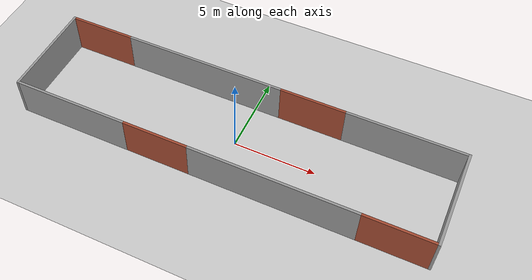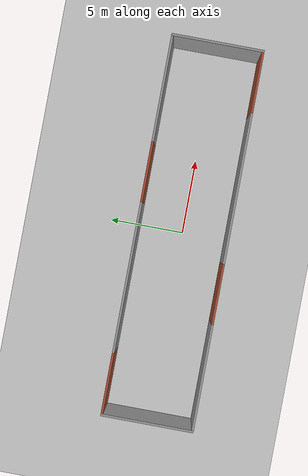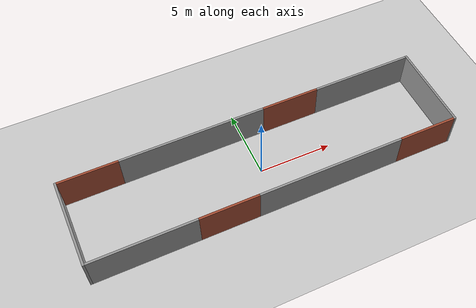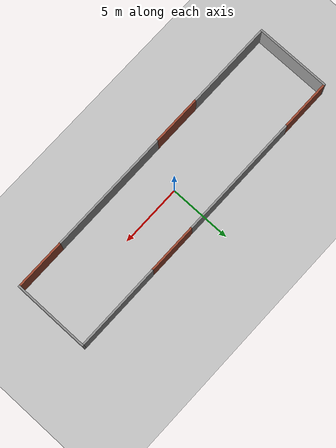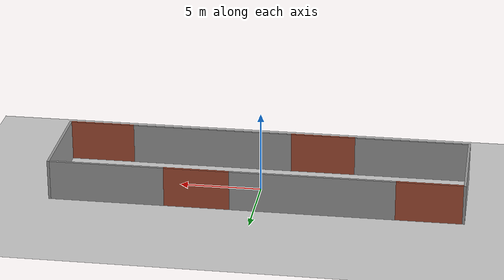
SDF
<sdf version="1.6">
 <world name="default">
  <light name="sun" type="directional">
   <pose>0 0 10 0 -0 0</pose>
   <diffuse>0.8 0.8 0.8 1</diffuse>
   <specular>0.2 0.2 0.2 1</specular>
   <attenuation>
    <range>1000</range>
    <constant>0.9</constant>
    <linear>0.01</linear>
    <quadratic>0.001</quadratic>
   </attenuation>
   <direction>-0.5 0.1 -0.9</direction>
  </light>
  <model name="ground_plane">
   <static>1</static>
   <link name="link">
    <collision name="collision">
     <geometry><plane><normal>0 0 1</normal><size>100 100</size></plane></geometry>
     <surface>
      <contact><collide_bitmask>65535</collide_bitmask></contact>
      <friction><ode><mu>100</mu><mu2>50</mu2></ode></friction>
     </surface>
    </collision>
    <visual name="visual">
     <cast_shadows>0</cast_shadows>
     <geometry><plane><normal>0 0 1</normal><size>100 100</size></plane></geometry>
     <material>
      <script><uri>file://media/materials/scripts/gazebo.material</uri><name>Gazebo/Grey</name></script>
     </material>
    </visual>
   </link>
  </model>
  <gravity>0 0 -9.8</gravity>
  <magnetic_field>6e-06 2.3e-05 -4.2e-05</magnetic_field>
  <atmosphere type="adiabatic"/>
  <physics name="default_physics" default="0" type="ode">
   <max_step_size>0.001</max_step_size>
   <real_time_factor>1</real_time_factor>
   <real_time_update_rate>1000</real_time_update_rate>
  </physics>
  <scene><ambient>0.4 0.4 0.4 1</ambient><background>0.7 0.7 0.7 1</background><shadows>1</shadows></scene>
  <spherical_coordinates>
   <surface_model>EARTH_WGS84</surface_model>
   <latitude_deg>0</latitude_deg>
   <longitude_deg>0</longitude_deg>
   <elevation>0</elevation>
   <heading_deg>0</heading_deg>
  </spherical_coordinates>
  <model name="twosides">
   <link name="Wall_0">
    <collision name="Wall_0_Collision">
     <geometry><box><size>4 0.15 2.5</size></box></geometry>
     <pose>0 0 1.25 0 -0 0</pose>
    </collision>
    <visual name="Wall_0_Visual">
     <pose>0 0 1.25 0 -0 0</pose>
     <geometry><box><size>4 0.15 2.5</size></box></geometry>
     <material>
      <script><uri>file://media/materials/scripts/gazebo.material</uri><name>Gazebo/Bricks</name></script>
      <ambient>1 1 1 1</ambient>
     </material>
     <meta><layer>0</layer></meta>
    </visual>
    <pose>-10.5 3 0 0 -0 0</pose>
   </link>
   <link name="Wall_10">
    <collision name="Wall_10_Collision">
     <geometry><box><size>4 0.15 2.5</size></box></geometry>
     <pose>0 0 1.25 0 -0 0</pose>
    </collision>
    <visual name="Wall_10_Visual">
     <pose>0 0 1.25 0 -0 0</pose>
     <geometry><box><size>4 0.15 2.5</size></box></geometry>
     <material>
      <script><uri>file://media/materials/scripts/gazebo.material</uri><name>Gazebo/Bricks</name></script>
      <ambient>1 1 1 1</ambient>
     </material>
     <meta><layer>0</layer></meta>
    </visual>
    <pose>3.5 3 0 0 -0 0</pose>
   </link>
   <link name="Wall_13">
    <collision name="Wall_13_Collision">
     <geometry><box><size>7 0.15 2.5</size></box></geometry>
     <pose>0 0 1.25 0 -0 0</pose>
    </collision>
    <visual name="Wall_13_Visual">
     <pose>0 0 1.25 0 -0 0</pose>
     <geometry><box><size>7 0.15 2.5</size></box></geometry>
     <material>
      <script><uri>file://media/materials/scripts/gazebo.material</uri><name>Gazebo/Grey</name></script>
      <ambient>1 1 1 1</ambient>
     </material>
     <meta><layer>0</layer></meta>
    </visual>
    <pose>9 3 0 0 -0 0</pose>
   </link>
   <link name="Wall_15">
    <collision name="Wall_15_Collision">
     <geometry><box><size>6.15 0.15 2.5</size></box></geometry>
     <pose>0 0 1.25 0 -0 0</pose>
    </collision>
    <visual name="Wall_15_Visual">
     <pose>0 0 1.25 0 -0 0</pose>
     <geometry><box><size>6.15 0.15 2.5</size></box></geometry>
     <material>
      <script><uri>file://media/materials/scripts/gazebo.material</uri><name>Gazebo/Grey</name></script>
      <ambient>1 1 1 1</ambient>
     </material>
     <meta><layer>0</layer></meta>
    </visual>
    <pose>12.575 0 0 0 -0 -1.5708</pose>
   </link>
   <link name="Wall_19">
    <collision name="Wall_19_Collision">
     <geometry><box><size>4 0.15 2.5</size></box></geometry>
     <pose>0 0 1.25 0 -0 0</pose>
    </collision>
    <visual name="Wall_19_Visual">
     <pose>0 0 1.25 0 -0 0</pose>
     <geometry><box><size>4 0.15 2.5</size></box></geometry>
     <material>
      <script><uri>file://media/materials/scripts/gazebo.material</uri><name>Gazebo/Bricks</name></script>
      <ambient>1 1 1 1</ambient>
     </material>
     <meta><layer>0</layer></meta>
    </visual>
    <pose>10.5 -3 0 0 -0 0</pose>
   </link>
   <link name="Wall_21">
    <collision name="Wall_21_Collision">
     <geometry><box><size>10 0.15 2.5</size></box></geometry>
     <pose>0 0 1.25 0 -0 0</pose>
    </collision>
    <visual name="Wall_21_Visual">
     <pose>0 0 1.25 0 -0 0</pose>
     <geometry><box><size>10 0.15 2.5</size></box></geometry>
     <material>
      <script><uri>file://media/materials/scripts/gazebo.material</uri><name>Gazebo/Grey</name></script>
      <ambient>1 1 1 1</ambient>
     </material>
     <meta><layer>0</layer></meta>
    </visual>
    <pose>3.5 -3 0 0 -0 0</pose>
   </link>
   <link name="Wall_23">
    <collision name="Wall_23_Collision">
     <geometry><box><size>4 0.15 2.5</size></box></geometry>
     <pose>0 0 1.25 0 -0 0</pose>
    </collision>
    <visual name="Wall_23_Visual">
     <pose>0 0 1.25 0 -0 0</pose>
     <geometry><box><size>4 0.15 2.5</size></box></geometry>
     <material>
      <script><uri>file://media/materials/scripts/gazebo.material</uri><name>Gazebo/Bricks</name></script>
      <ambient>1 1 1 1</ambient>
     </material>
     <meta><layer>0</layer></meta>
    </visual>
    <pose>-3.5 -3 0 0 -0 0</pose>
   </link>
   <link name="Wall_25">
    <collision name="Wall_25_Collision">
     <geometry><box><size>7 0.15 2.5</size></box></geometry>
     <pose>0 0 1.25 0 -0 0</pose>
    </collision>
    <visual name="Wall_25_Visual">
     <pose>0 0 1.25 0 -0 0</pose>
     <geometry><box><size>7 0.15 2.5</size></box></geometry>
     <material>
      <script><uri>file://media/materials/scripts/gazebo.material</uri><name>Gazebo/Grey</name></script>
      <ambient>1 1 1 1</ambient>
     </material>
     <meta><layer>0</layer></meta>
    </visual>
    <pose>-9 -3 0 0 -0 0</pose>
   </link>
   <link name="Wall_27">
    <collision name="Wall_27_Collision">
     <geometry><box><size>6.15 0.15 2.5</size></box></geometry>
     <pose>0 0 1.25 0 -0 0</pose>
    </collision>
    <visual name="Wall_27_Visual">
     <pose>0 0 1.25 0 -0 0</pose>
     <geometry><box><size>6.15 0.15 2.5</size></box></geometry>
     <material>
      <script><uri>file://media/materials/scripts/gazebo.material</uri><name>Gazebo/Grey</name></script>
      <ambient>1 1 1 1</ambient>
     </material>
     <meta><layer>0</layer></meta>
    </visual>
    <pose>-12.575 0 0 0 -0 -1.5708</pose>
   </link>
   <link name="Wall_6">
    <collision name="Wall_6_Collision">
     <geometry><box><size>10 0.15 2.5</size></box></geometry>
     <pose>0 0 1.25 0 -0 0</pose>
    </collision>
    <visual name="Wall_6_Visual">
     <pose>0 0 1.25 0 -0 0</pose>
     <geometry><box><size>10 0.15 2.5</size></box></geometry>
     <material>
      <script><uri>file://media/materials/scripts/gazebo.material</uri><name>Gazebo/Grey</name></script>
      <ambient>1 1 1 1</ambient>
     </material>
     <meta><layer>0</layer></meta>
    </visual>
    <pose>-3.5 3 0 0 -0 0</pose>
   </link>
   <static>1</static>
  </model>
 </world>
</sdf>
